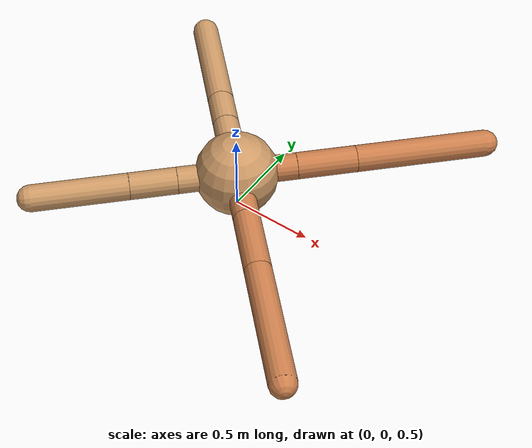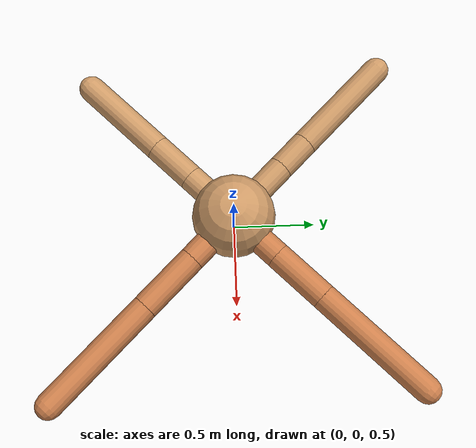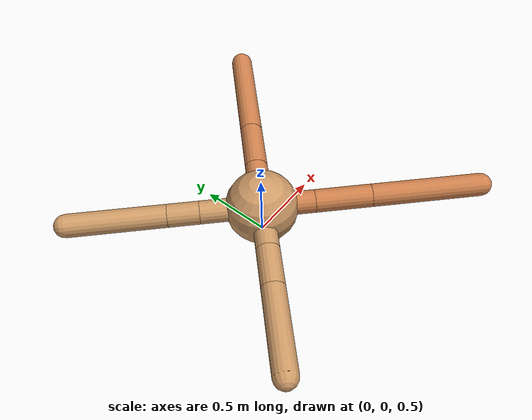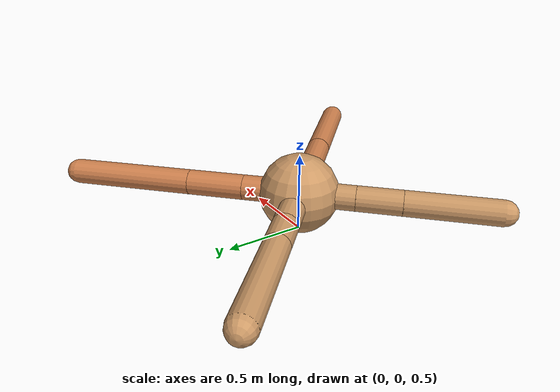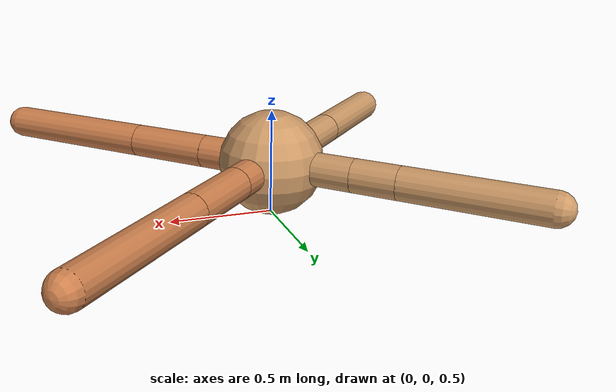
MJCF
<mujoco model="ant">
  <compiler angle="degree" coordinate="local" inertiafromgeom="true" />
  <option integrator="RK4" timestep="0.01" />
  <custom>
    <numeric data="0.0 0.0 0.55 1.0 0.0 0.0 0.0 0.0 1.0 0.0 -1.0 0.0 -1.0 0.0 1.0" name="init_qpos" />
  </custom>
  <default>
    <joint armature="1" damping="1" limited="true" />
    <geom conaffinity="0" condim="3" density="5.0" friction="1.5 0.1 0.1" margin="0.01" rgba="0.8 0.6 0.4 1" />
  </default>
  <worldbody>
    <body name="torso" pos="0 0 0.75">
      <geom name="torso_geom" pos="0 0 0" size="0.25" type="sphere" />

      <body name="front_left_leg" pos="0 0 0">
        <geom fromto="0.0 0.0 0.0 0.2524682693566979 0.2524682693566979 0.0" name="aux_1_geom" size="0.08" type="capsule" rgba=".8 .5 .3 1" />
        <body name="aux_1" pos="0.2524682693566979 0.2524682693566979 0.0">
          <joint axis="0 0 1" name="hip_1" pos="0.0 0.0 0.0" range="-40 40" type="hinge" />
          <geom fromto="0.0 0.0 0.0 0.2544816262898877 0.2544816262898877 0.0" name="left_leg_geom" size="0.08" type="capsule" rgba=".8 .5 .3 1" />
          <body pos="0.2544816262898877 0.2544816262898877 0.0" name="front_left_foot">
            <joint axis="-1 1 0" name="ankle_1" pos="0.0 0.0 0.0" range="30 100" type="hinge" />
            <geom fromto="0.0 0.0 0.0 0.557418315211612 0.557418315211612 0.0" name="left_ankle_geom" size="0.08" type="capsule" rgba=".8 .5 .3 1" />
          </body>
        </body>
      </body>
      <body name="front_right_leg" pos="0 0 0">
        <geom fromto="0.0 0.0 0.0 -0.2959361417727959 0.2959361417727959 0.0" name="aux_2_geom" size="0.08" type="capsule" />
        <body name="aux_2" pos="-0.2959361417727959 0.2959361417727959 0.0">
          <joint axis="0 0 1" name="hip_2" pos="0.0 0.0 0.0" range="-40 40" type="hinge" />
          <geom fromto="0.0 0.0 0.0 -0.15285631788077064 0.15285631788077064 0.0" name="right_leg_geom" size="0.08" type="capsule" />
          <body pos="-0.15285631788077064 0.15285631788077064 0.0" name="front_right_foot">
            <joint axis="1 1 0" name="ankle_2" pos="0.0 0.0 0.0" range="-100 -30" type="hinge" />
            <geom fromto="0.0 0.0 0.0 -0.4724985805852955 0.4724985805852955 0.0" name="right_ankle_geom" size="0.08" type="capsule" />
          </body>
        </body>
      </body>
      <body name="left_back_leg" pos="0 0 0">
        <geom fromto="0.0 0.0 0.0 -0.2500821135480485 -0.2500821135480485 0.0" name="aux_3_geom" size="0.08" type="capsule" />
        <body name="aux_3" pos="-0.2500821135480485 -0.2500821135480485 0.0">
          <joint axis="0 0 1" name="hip_3" pos="0.0 0.0 0.0" range="-40 40" type="hinge" />
          <geom fromto="0.0 0.0 0.0 -0.19942162029564414 -0.19942162029564414 0.0" name="back_leg_geom" size="0.08" type="capsule" />
          <body pos="-0.19942162029564414 -0.19942162029564414 0.0" name="left_back_foot">
            <joint axis="-1 1 0" name="ankle_3" pos="0.0 0.0 0.0" range="-100 -30" type="hinge" />
            <geom fromto="0.0 0.0 0.0 -0.40644473842649664 -0.40644473842649664 0.0" name="third_ankle_geom" size="0.08" type="capsule" />
          </body>
        </body>
      </body>
      <body name="right_back_leg" pos="0 0 0">
        <geom fromto="0.0 0.0 0.0 0.25568300669353267 -0.25568300669353267 0.0" name="aux_4_geom" size="0.08" type="capsule" rgba=".8 .5 .3 1" />
        <body name="aux_4" pos="0.25568300669353267 -0.25568300669353267 0.0">
          <joint axis="0 0 1" name="hip_4" pos="0.0 0.0 0.0" range="-40 40" type="hinge" />
          <geom fromto="0.0 0.0 0.0 0.2773980549629919 -0.2773980549629919 0.0" name="rightback_leg_geom" size="0.08" type="capsule" rgba=".8 .5 .3 1" />
          <body pos="0.2773980549629919 -0.2773980549629919 0.0" name="right_back_foot">
            <joint axis="1 1 0" name="ankle_4" pos="0.0 0.0 0.0" range="30 100" type="hinge" />
            <geom fromto="0.0 0.0 0.0 0.5472794366120833 -0.5472794366120833 0.0" name="fourth_ankle_geom" size="0.08" type="capsule" rgba=".8 .5 .3 1" />
          </body>
        </body>
      </body>
    </body>
  </worldbody>
  <actuator>
    <motor ctrllimited="true" ctrlrange="-1.0 1.0" joint="hip_4" gear="150" />
    <motor ctrllimited="true" ctrlrange="-1.0 1.0" joint="ankle_4" gear="150" />
    <motor ctrllimited="true" ctrlrange="-1.0 1.0" joint="hip_1" gear="150" />
    <motor ctrllimited="true" ctrlrange="-1.0 1.0" joint="ankle_1" gear="150" />
    <motor ctrllimited="true" ctrlrange="-1.0 1.0" joint="hip_2" gear="150" />
    <motor ctrllimited="true" ctrlrange="-1.0 1.0" joint="ankle_2" gear="150" />
    <motor ctrllimited="true" ctrlrange="-1.0 1.0" joint="hip_3" gear="150" />
    <motor ctrllimited="true" ctrlrange="-1.0 1.0" joint="ankle_3" gear="150" />
  </actuator>
</mujoco>
